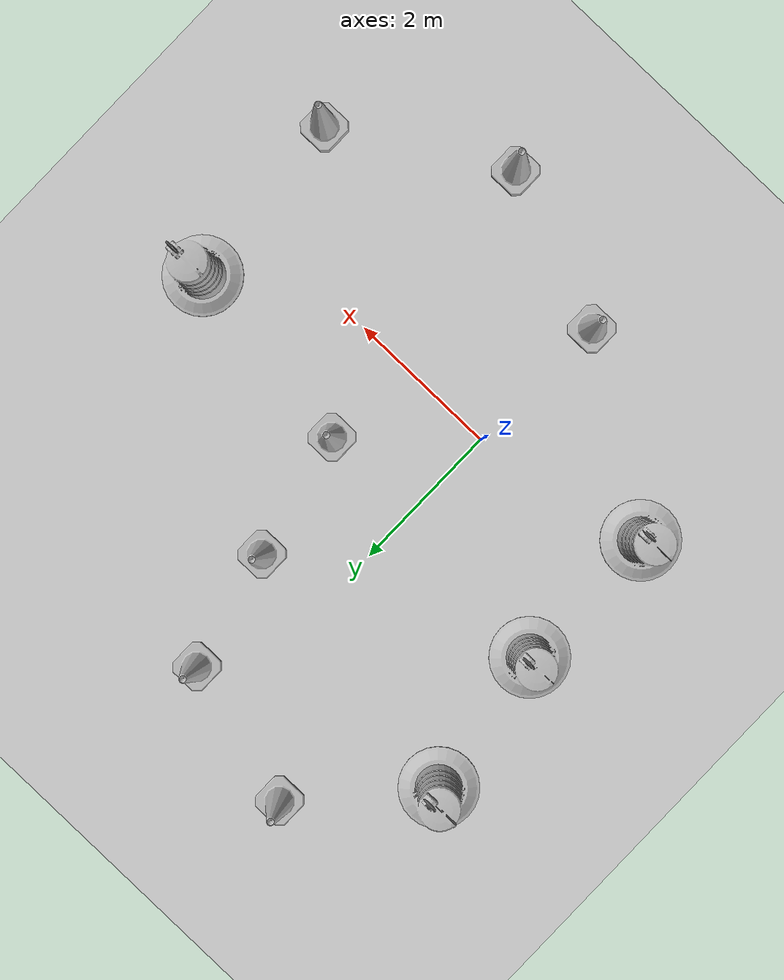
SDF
<sdf version="1.7">
 <world name="default">
  <light name="sun" type="directional">
   <pose>0 0 10 0 -0 0</pose>
   <diffuse>0.8 0.8 0.8 1</diffuse>
   <specular>0.2 0.2 0.2 1</specular>
   <attenuation>
    <range>1000</range>
    <constant>0.9</constant>
    <linear>0.01</linear>
    <quadratic>0.001</quadratic>
   </attenuation>
   <direction>-0.5 0.1 -0.9</direction>
   <spot><inner_angle>0</inner_angle><outer_angle>0</outer_angle><falloff>0</falloff></spot>
  </light>
  <model name="ground_plane">
   <static>1</static>
   <link name="link">
    <collision name="collision">
     <geometry><plane><normal>0 0 1</normal><size>100 100</size></plane></geometry>
     <surface>
      <contact><collide_bitmask>65535</collide_bitmask></contact>
      <friction><ode><mu>100</mu><mu2>50</mu2></ode></friction>
     </surface>
    </collision>
    <visual name="visual">
     <cast_shadows>0</cast_shadows>
     <geometry><plane><normal>0 0 1</normal><size>100 100</size></plane></geometry>
     <material>
      <script><uri>file://media/materials/scripts/gazebo.material</uri><name>Gazebo/Grey</name></script>
     </material>
    </visual>
   </link>
  </model>
  <gravity>0 0 -9.8</gravity>
  <magnetic_field>6e-06 2.3e-05 -4.2e-05</magnetic_field>
  <atmosphere type="adiabatic"/>
  <physics type="ode">
   <max_step_size>0.001</max_step_size>
   <real_time_factor>1</real_time_factor>
   <real_time_update_rate>1000</real_time_update_rate>
  </physics>
  <scene><ambient>0.4 0.4 0.4 1</ambient><background>0.7 0.7 0.7 1</background><shadows>1</shadows></scene>
  <audio><device>default</device></audio>
  <spherical_coordinates>
   <surface_model>EARTH_WGS84</surface_model>
   <latitude_deg>0</latitude_deg>
   <longitude_deg>0</longitude_deg>
   <elevation>0</elevation>
   <heading_deg>0</heading_deg>
  </spherical_coordinates>
  <model name="Construction Barrel">
   <link name="link">
    <inertial>
     <pose>0 0 0.4 0 -0 0</pose>
     <mass>500</mass>
     <inertia><ixx>51.2096</ixx><iyy>51.2096</iyy><izz>25</izz><ixy>0</ixy><ixz>0</ixz><iyz>0</iyz></inertia>
    </inertial>
    <collision name="collision">
     <geometry><mesh><uri>model://construction_barrel/meshes/construction_barrel.dae</uri></mesh></geometry>
    </collision>
    <visual name="visual">
     <geometry><mesh><uri>model://construction_barrel/meshes/construction_barrel.dae</uri></mesh></geometry>
    </visual>
   </link>
   <pose>-2.29287 -0.466305 -0 0 0 -2.4e-05</pose>
  </model>
  <model name="Construction Barrel_0">
   <link name="link">
    <inertial>
     <pose>0 0 0.4 0 -0 0</pose>
     <mass>500</mass>
     <inertia><ixx>51.2096</ixx><iyy>51.2096</iyy><izz>25</izz><ixy>0</ixy><ixz>0</ixz><iyz>0</iyz></inertia>
    </inertial>
    <collision name="collision">
     <geometry><mesh><uri>model://construction_barrel/meshes/construction_barrel.dae</uri></mesh></geometry>
    </collision>
    <visual name="visual">
     <geometry><mesh><uri>model://construction_barrel/meshes/construction_barrel.dae</uri></mesh></geometry>
    </visual>
   </link>
   <pose>-2.30035 1.53079 -2e-06 -7e-06 -4e-06 -2e-05</pose>
  </model>
  <model name="Construction Barrel_1">
   <link name="link">
    <inertial>
     <pose>0 0 0.4 0 -0 0</pose>
     <mass>500</mass>
     <inertia><ixx>51.2096</ixx><iyy>51.2096</iyy><izz>25</izz><ixy>0</ixy><ixz>0</ixz><iyz>0</iyz></inertia>
    </inertial>
    <collision name="collision">
     <geometry><mesh><uri>model://construction_barrel/meshes/construction_barrel.dae</uri></mesh></geometry>
    </collision>
    <visual name="visual">
     <geometry><mesh><uri>model://construction_barrel/meshes/construction_barrel.dae</uri></mesh></geometry>
    </visual>
   </link>
   <pose>-2.60058 3.47648 -1e-06 3e-06 7e-06 -1.8e-05</pose>
  </model>
  <model name="Construction Cone">
   <link name="link">
    <collision name="collision">
     <geometry>
      <mesh><scale>10 10 10</scale><uri>model://construction_cone/meshes/construction_cone.dae</uri></mesh>
     </geometry>
    </collision>
    <visual name="visual">
     <geometry>
      <mesh><scale>10 10 10</scale><uri>model://construction_cone/meshes/construction_cone.dae</uri></mesh>
     </geometry>
    </visual>
    <inertial>
     <inertia><ixx>1</ixx><ixy>0</ixy><ixz>0</ixz><iyy>1</iyy><iyz>0</iyz><izz>1</izz></inertia>
     <mass>1</mass>
    </inertial>
   </link>
   <pose>1.3501 1.25255 -5e-06 -5e-06 1e-06 0</pose>
  </model>
  <model name="Construction Cone_0">
   <link name="link">
    <collision name="collision">
     <geometry>
      <mesh><scale>10 10 10</scale><uri>model://construction_cone/meshes/construction_cone.dae</uri></mesh>
     </geometry>
    </collision>
    <visual name="visual">
     <geometry>
      <mesh><scale>10 10 10</scale><uri>model://construction_cone/meshes/construction_cone.dae</uri></mesh>
     </geometry>
    </visual>
    <inertial>
     <inertia><ixx>1</ixx><ixy>0</ixy><ixz>0</ixz><iyy>1</iyy><iyz>0</iyz><izz>1</izz></inertia>
     <mass>1</mass>
    </inertial>
   </link>
   <pose>0.978093 2.89656 -0 0 -1e-06 0</pose>
  </model>
  <model name="Construction Cone_1">
   <link name="link">
    <collision name="collision">
     <geometry>
      <mesh><scale>10 10 10</scale><uri>model://construction_cone/meshes/construction_cone.dae</uri></mesh>
     </geometry>
    </collision>
    <visual name="visual">
     <geometry>
      <mesh><scale>10 10 10</scale><uri>model://construction_cone/meshes/construction_cone.dae</uri></mesh>
     </geometry>
    </visual>
    <inertial>
     <inertia><ixx>1</ixx><ixy>0</ixy><ixz>0</ixz><iyy>1</iyy><iyz>0</iyz><izz>1</izz></inertia>
     <mass>1</mass>
    </inertial>
   </link>
   <pose>0.597972 4.45468 -0 0 -1e-06 0</pose>
  </model>
  <model name="Construction Cone_2">
   <link name="link">
    <collision name="collision">
     <geometry>
      <mesh><scale>10 10 10</scale><uri>model://construction_cone/meshes/construction_cone.dae</uri></mesh>
     </geometry>
    </collision>
    <visual name="visual">
     <geometry>
      <mesh><scale>10 10 10</scale><uri>model://construction_cone/meshes/construction_cone.dae</uri></mesh>
     </geometry>
    </visual>
    <inertial>
     <inertia><ixx>1</ixx><ixy>0</ixy><ixz>0</ixz><iyy>1</iyy><iyz>0</iyz><izz>1</izz></inertia>
     <mass>1</mass>
    </inertial>
   </link>
   <pose>-1.28602 4.94712 -0 0 -1e-06 0</pose>
  </model>
  <model name="Construction Cone_3">
   <link name="link">
    <collision name="collision">
     <geometry>
      <mesh><scale>10 10 10</scale><uri>model://construction_cone/meshes/construction_cone.dae</uri></mesh>
     </geometry>
    </collision>
    <visual name="visual">
     <geometry>
      <mesh><scale>10 10 10</scale><uri>model://construction_cone/meshes/construction_cone.dae</uri></mesh>
     </geometry>
    </visual>
    <inertial>
     <inertia><ixx>1</ixx><ixy>0</ixy><ixz>0</ixz><iyy>1</iyy><iyz>0</iyz><izz>1</izz></inertia>
     <mass>1</mass>
    </inertial>
   </link>
   <pose>-0.047695 -1.93703 0 -0 -0 -0</pose>
  </model>
  <model name="Construction Cone_4">
   <link name="link">
    <collision name="collision">
     <geometry>
      <mesh><scale>10 10 10</scale><uri>model://construction_cone/meshes/construction_cone.dae</uri></mesh>
     </geometry>
    </collision>
    <visual name="visual">
     <geometry>
      <mesh><scale>10 10 10</scale><uri>model://construction_cone/meshes/construction_cone.dae</uri></mesh>
     </geometry>
    </visual>
    <inertial>
     <inertia><ixx>1</ixx><ixy>0</ixy><ixz>0</ixz><iyy>1</iyy><iyz>0</iyz><izz>1</izz></inertia>
     <mass>1</mass>
    </inertial>
   </link>
   <pose>1.98375 -2.69748 -0 0 -0 0</pose>
  </model>
  <model name="Construction Cone_5">
   <link name="link">
    <collision name="collision">
     <geometry>
      <mesh><scale>10 10 10</scale><uri>model://construction_cone/meshes/construction_cone.dae</uri></mesh>
     </geometry>
    </collision>
    <visual name="visual">
     <geometry>
      <mesh><scale>10 10 10</scale><uri>model://construction_cone/meshes/construction_cone.dae</uri></mesh>
     </geometry>
    </visual>
    <inertial>
     <inertia><ixx>1</ixx><ixy>0</ixy><ixz>0</ixz><iyy>1</iyy><iyz>0</iyz><izz>1</izz></inertia>
     <mass>1</mass>
    </inertial>
   </link>
   <pose>4.06783 -1.45597 -0 0 -1e-06 0</pose>
  </model>
  <model name="Construction Barrel_2">
   <link name="link">
    <inertial>
     <pose>0 0 0.4 0 -0 0</pose>
     <mass>500</mass>
     <inertia><ixx>51.2096</ixx><iyy>51.2096</iyy><izz>25</izz><ixy>0</ixy><ixz>0</ixz><iyz>0</iyz></inertia>
    </inertial>
    <collision name="collision">
     <geometry><mesh><uri>model://construction_barrel/meshes/construction_barrel.dae</uri></mesh></geometry>
    </collision>
    <visual name="visual">
     <geometry><mesh><uri>model://construction_barrel/meshes/construction_barrel.dae</uri></mesh></geometry>
    </visual>
   </link>
   <pose>3.89359 0.91112 0 0 0 -1.6e-05</pose>
  </model>
 </world>
</sdf>
